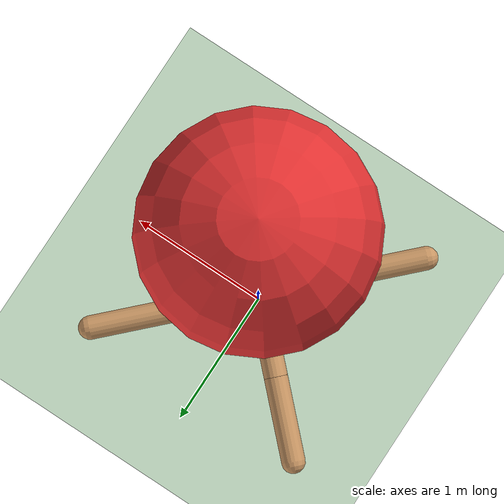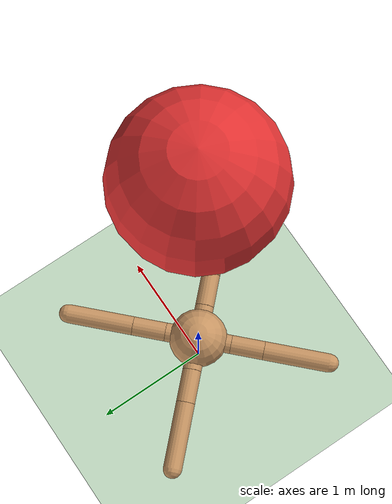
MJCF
<mujoco model="ant">
  <compiler inertiafromgeom="true" angle="degree" coordinate="local" />
  <option timestep="0.02" integrator="RK4" />
  <custom>
    <numeric name="init_qpos" data="0.0 0.0 0.55 1.0 0.0 0.0 0.0 0.0 1.0 0.0 -1.0 0.0 -1.0 0.0 1.0" />
  </custom>
  <default>
    <joint limited="true" armature="1" damping="1" />
    <geom condim="3" conaffinity="0" margin="0.01" friction="1 0.5 0.5" solref=".02 1" solimp=".8 .8 .01" rgba="0.8 0.6 0.4 1" density="5.0" />
  </default>
  <asset>
    <texture type="skybox" builtin="gradient" width="100" height="100" rgb1="1 1 1" rgb2="0 0 0" />
    <texture name="texgeom" type="cube" builtin="flat" mark="cross" width="127" height="1278" rgb1="0.8 0.6 0.4" rgb2="0.8 0.6 0.4" markrgb="1 1 1" random="0.01" />
    <texture name="texplane" type="2d" builtin="checker" rgb1="0 0 0" rgb2="0.8 0.8 0.8" width="100" height="100" />
    <material name='MatPlane' texture="texplane" shininess="1" texrepeat="60 60" specular="1"  reflectance="0.5" />
    <material name='geom' texture="texgeom" texuniform="true" />
  </asset>
  <worldbody>
    <light directional="true" cutoff="100" exponent="1" diffuse="1 1 1" specular=".1 .1 .1" pos="0 0 1.3" dir="-0 0 -1.3" />
    <geom name='floor' pos='0 0 0' size='40 40 40' type='plane' conaffinity='1' rgba='0.8 0.9 0.8 1' condim='3' />
    <body name="torso" pos="0 0 0.75">
      <geom name="torso_geom" type="sphere" size="0.25" pos="0 0 0" />
      <joint name="root" type="free" limited="false" pos="0 0 0" axis="0 0 1" margin="0.01" armature="0" damping="0" />
      <body name="front_left_leg" pos="0 0 0">
        <geom name="aux_1_geom" type="capsule" size="0.08" fromto="0.0 0.0 0.0 0.2 0.2 0.0" />
        <body name="aux_1" pos="0.2 0.2 0">
          <joint name="hip_1" type="hinge" pos="0.0 0.0 0.0" axis="0 0 1" range="-30 30" />
          <geom name="left_leg_geom" type="capsule" size="0.08" fromto="0.0 0.0 0.0 0.2 0.2 0.0" />
          <body pos="0.2 0.2 0">
            <joint name="ankle_1" type="hinge" pos="0.0 0.0 0.0" axis="-1 1 0" range="30 70" />
            <geom name="left_ankle_geom" type="capsule" size="0.08" fromto="0.0 0.0 0.0 0.4 0.4 0.0" />
          </body>
        </body>
      </body>
      <body name="front_right_leg" pos="0 0 0">
        <geom name="aux_2_geom" type="capsule" size="0.08" fromto="0.0 0.0 0.0 -0.2 0.2 0.0" />
        <body name="aux_2" pos="-0.2 0.2 0">
          <joint name="hip_2" type="hinge" pos="0.0 0.0 0.0" axis="0 0 1" range="-30 30" />
          <geom name="right_leg_geom" type="capsule" size="0.08" fromto="0.0 0.0 0.0 -0.2 0.2 0.0" />
          <body pos="-0.2 0.2 0">
            <joint name="ankle_2" type="hinge" pos="0.0 0.0 0.0" axis="1 1 0" range="-70 -30" />
            <geom name="right_ankle_geom" type="capsule" size="0.08" fromto="0.0 0.0 0.0 -0.4 0.4 0.0" />
          </body>
        </body>
      </body>
      <body name="back_leg" pos="0 0 0">
        <geom name="aux_3_geom" type="capsule" size="0.08" fromto="0.0 0.0 0.0 -0.2 -0.2 0.0" />
        <body name="aux_3" pos="-0.2 -0.2 0">
          <joint name="hip_3" type="hinge" pos="0.0 0.0 0.0" axis="0 0 1" range="-30 30" />
          <geom name="back_leg_geom" type="capsule" size="0.08" fromto="0.0 0.0 0.0 -0.2 -0.2 0.0" />
          <body pos="-0.2 -0.2 0">
            <joint name="ankle_3" type="hinge" pos="0.0 0.0 0.0" axis="-1 1 0" range="-70 -30" />
            <geom name="third_ankle_geom" type="capsule" size="0.08" fromto="0.0 0.0 0.0 -0.4 -0.4 0.0" />
          </body>
        </body>
      </body>
      <body name="right_back_leg" pos="0 0 0">
        <geom name="aux_4_geom" type="capsule" size="0.08" fromto="0.0 0.0 0.0 0.2 -0.2 0.0" />
        <body name="aux_4" pos="0.2 -0.2 0">
          <joint name="hip_4" type="hinge" pos="0.0 0.0 0.0" axis="0 0 1" range="-30 30" />
          <geom name="rightback_leg_geom" type="capsule" size="0.08" fromto="0.0 0.0 0.0 0.2 -0.2 0.0" />
          <body pos="0.2 -0.2 0">
            <joint name="ankle_4" type="hinge" pos="0.0 0.0 0.0" axis="1 1 0" range="30 70" />
            <geom name="fourth_ankle_geom" type="capsule" size="0.08" fromto="0.0 0.0 0.0 0.4 -0.4 0.0" />
          </body>
        </body>
      </body>
    </body>
      <body name="target" pos="0 0 5">
			<joint armature="0" axis="1 0 0" damping="0" limited="true" name="target_x" pos="0 0 0" range="-100 100" ref=".1" stiffness="0" type="slide"/>
			<joint armature="0" axis="0 1 0" damping="0" limited="true" name="target_y" pos="0 0 0" range="-100 100" ref="-.1" stiffness="0" type="slide"/>
			<geom conaffinity="0" contype="0" name="target" pos="0 0 0" rgba="0.9 0.2 0.2 1" size="0.5" type="sphere"/>
      </body>
<body name="goal" pos="0 0 5">
			<joint armature="0" axis="1 0 0" damping="0" limited="true" name="goal_x" pos="0 0 0" range="-100 100" ref=".1" stiffness="0" type="slide"/>
			<joint armature="0" axis="0 1 0" damping="0" limited="true" name="goal_y" pos="0 0 0" range="-100 100" ref="-.1" stiffness="0" type="slide"/>
			<geom conaffinity="0" contype="0" name="goal" pos="0 0 0" rgba="0 0 1 1" size="0.5" type="sphere"/>
      </body>
  </worldbody>
  <actuator>
    <motor joint="hip_4" ctrlrange="-30.0 30.0" ctrllimited="true" />
    <motor joint="ankle_4" ctrlrange="-30.0 30.0" ctrllimited="true" />
    <motor joint="hip_1" ctrlrange="-30.0 30.0" ctrllimited="true" />
    <motor joint="ankle_1" ctrlrange="-30.0 30.0" ctrllimited="true" />
    <motor joint="hip_2" ctrlrange="-30.0 30.0" ctrllimited="true" />
    <motor joint="ankle_2" ctrlrange="-30.0 30.0" ctrllimited="true" />
    <motor joint="hip_3" ctrlrange="-30.0 30.0" ctrllimited="true" />
    <motor joint="ankle_3" ctrlrange="-30.0 30.0" ctrllimited="true" />
  </actuator>
</mujoco>
